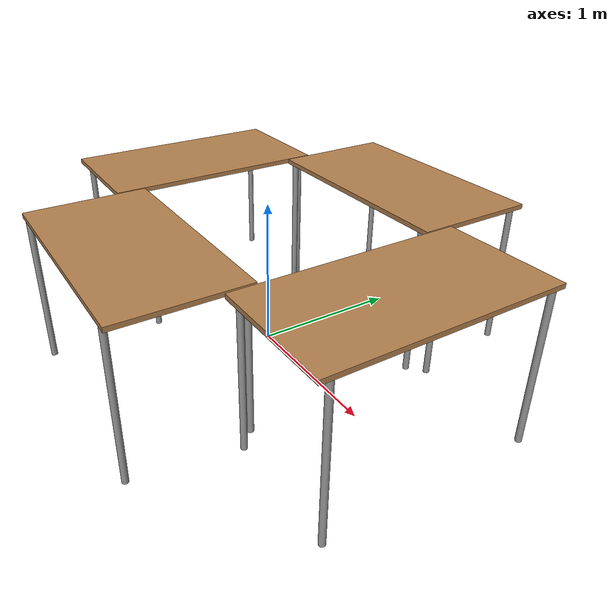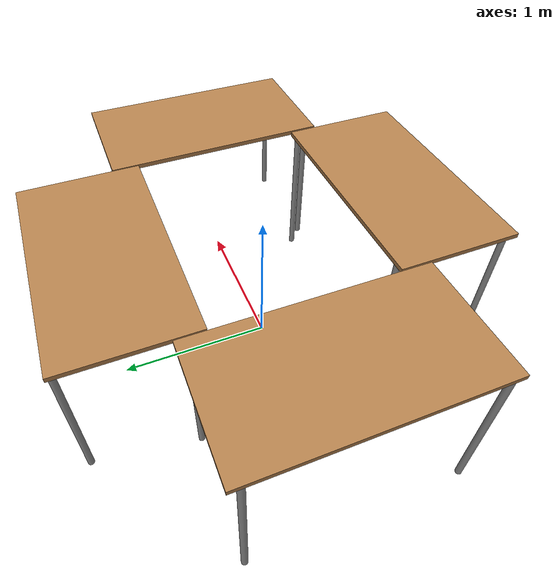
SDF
<sdf version="1.7">
 <world name="__default__">
  <gravity>0 0 -9.8</gravity>
  <magnetic_field>6e-06 2.3e-05 -4.2e-05</magnetic_field>
  <atmosphere type="adiabatic"/>
  <physics type="ode">
   <max_step_size>0.001</max_step_size>
   <real_time_factor>1</real_time_factor>
   <real_time_update_rate>1000</real_time_update_rate>
  </physics>
  <scene><ambient>0.4 0.4 0.4 1</ambient><background>0.7 0.7 0.7 1</background><shadows>1</shadows></scene>
  <spherical_coordinates>
   <surface_model>EARTH_WGS84</surface_model>
   <latitude_deg>0</latitude_deg>
   <longitude_deg>0</longitude_deg>
   <elevation>0</elevation>
   <heading_deg>0</heading_deg>
  </spherical_coordinates>
  <model name="Tables_test">
   <model name="table">
    <static>1</static>
    <link name="link">
     <collision name="surface">
      <pose>0 0 1 0 -0 0</pose>
      <geometry><box><size>1.5 0.8 0.03</size></box></geometry>
      <surface><friction><ode><mu>0.6</mu><mu2>0.6</mu2></ode></friction></surface>
     </collision>
     <visual name="visual1">
      <pose>0 0 1 0 -0 0</pose>
      <geometry><box><size>1.5 0.8 0.03</size></box></geometry>
      <material>
       <script><uri>file://media/materials/scripts/gazebo.material</uri><name>Gazebo/Wood</name></script>
      </material>
     </visual>
     <collision name="front_left_leg">
      <pose>0.68 0.38 0.5 0 -0 0</pose>
      <geometry><cylinder><radius>0.02</radius><length>1</length></cylinder></geometry>
     </collision>
     <visual name="front_left_leg">
      <pose>0.68 0.38 0.5 0 -0 0</pose>
      <geometry><cylinder><radius>0.02</radius><length>1</length></cylinder></geometry>
      <material>
       <script><uri>file://media/materials/scripts/gazebo.material</uri><name>Gazebo/Grey</name></script>
      </material>
     </visual>
     <collision name="front_right_leg">
      <pose>0.68 -0.38 0.5 0 -0 0</pose>
      <geometry><cylinder><radius>0.02</radius><length>1</length></cylinder></geometry>
     </collision>
     <visual name="front_right_leg">
      <pose>0.68 -0.38 0.5 0 -0 0</pose>
      <geometry><cylinder><radius>0.02</radius><length>1</length></cylinder></geometry>
      <material>
       <script><uri>file://media/materials/scripts/gazebo.material</uri><name>Gazebo/Grey</name></script>
      </material>
     </visual>
     <collision name="back_right_leg">
      <pose>-0.68 -0.38 0.5 0 -0 0</pose>
      <geometry><cylinder><radius>0.02</radius><length>1</length></cylinder></geometry>
     </collision>
     <visual name="back_right_leg">
      <pose>-0.68 -0.38 0.5 0 -0 0</pose>
      <geometry><cylinder><radius>0.02</radius><length>1</length></cylinder></geometry>
      <material>
       <script><uri>file://media/materials/scripts/gazebo.material</uri><name>Gazebo/Grey</name></script>
      </material>
     </visual>
     <collision name="back_left_leg">
      <pose>-0.68 0.38 0.5 0 -0 0</pose>
      <geometry><cylinder><radius>0.02</radius><length>1</length></cylinder></geometry>
     </collision>
     <visual name="back_left_leg">
      <pose>-0.68 0.38 0.5 0 -0 0</pose>
      <geometry><cylinder><radius>0.02</radius><length>1</length></cylinder></geometry>
      <material>
       <script><uri>file://media/materials/scripts/gazebo.material</uri><name>Gazebo/Grey</name></script>
      </material>
     </visual>
    </link>
    <pose>-0.002493 -0.963577 0 0 -0 0</pose>
   </model>
   <model name="table_0">
    <static>1</static>
    <link name="link">
     <collision name="surface">
      <pose>0 0 1 0 -0 0</pose>
      <geometry><box><size>1.5 0.8 0.03</size></box></geometry>
      <surface><friction><ode><mu>0.6</mu><mu2>0.6</mu2></ode></friction></surface>
     </collision>
     <visual name="visual1">
      <pose>0 0 1 0 -0 0</pose>
      <geometry><box><size>1.5 0.8 0.03</size></box></geometry>
      <material>
       <script><uri>file://media/materials/scripts/gazebo.material</uri><name>Gazebo/Wood</name></script>
      </material>
     </visual>
     <collision name="front_left_leg">
      <pose>0.68 0.38 0.5 0 -0 0</pose>
      <geometry><cylinder><radius>0.02</radius><length>1</length></cylinder></geometry>
     </collision>
     <visual name="front_left_leg">
      <pose>0.68 0.38 0.5 0 -0 0</pose>
      <geometry><cylinder><radius>0.02</radius><length>1</length></cylinder></geometry>
      <material>
       <script><uri>file://media/materials/scripts/gazebo.material</uri><name>Gazebo/Grey</name></script>
      </material>
     </visual>
     <collision name="front_right_leg">
      <pose>0.68 -0.38 0.5 0 -0 0</pose>
      <geometry><cylinder><radius>0.02</radius><length>1</length></cylinder></geometry>
     </collision>
     <visual name="front_right_leg">
      <pose>0.68 -0.38 0.5 0 -0 0</pose>
      <geometry><cylinder><radius>0.02</radius><length>1</length></cylinder></geometry>
      <material>
       <script><uri>file://media/materials/scripts/gazebo.material</uri><name>Gazebo/Grey</name></script>
      </material>
     </visual>
     <collision name="back_right_leg">
      <pose>-0.68 -0.38 0.5 0 -0 0</pose>
      <geometry><cylinder><radius>0.02</radius><length>1</length></cylinder></geometry>
     </collision>
     <visual name="back_right_leg">
      <pose>-0.68 -0.38 0.5 0 -0 0</pose>
      <geometry><cylinder><radius>0.02</radius><length>1</length></cylinder></geometry>
      <material>
       <script><uri>file://media/materials/scripts/gazebo.material</uri><name>Gazebo/Grey</name></script>
      </material>
     </visual>
     <collision name="back_left_leg">
      <pose>-0.68 0.38 0.5 0 -0 0</pose>
      <geometry><cylinder><radius>0.02</radius><length>1</length></cylinder></geometry>
     </collision>
     <visual name="back_left_leg">
      <pose>-0.68 0.38 0.5 0 -0 0</pose>
      <geometry><cylinder><radius>0.02</radius><length>1</length></cylinder></geometry>
      <material>
       <script><uri>file://media/materials/scripts/gazebo.material</uri><name>Gazebo/Grey</name></script>
      </material>
     </visual>
    </link>
    <pose>0.000767 0.967677 0 0 -0 0</pose>
   </model>
   <model name="table_1">
    <static>1</static>
    <link name="link">
     <collision name="surface">
      <pose>0 0 1 0 -0 0</pose>
      <geometry><box><size>1.5 0.8 0.03</size></box></geometry>
      <surface><friction><ode><mu>0.6</mu><mu2>0.6</mu2></ode></friction></surface>
     </collision>
     <visual name="visual1">
      <pose>0 0 1 0 -0 0</pose>
      <geometry><box><size>1.5 0.8 0.03</size></box></geometry>
      <material>
       <script><uri>file://media/materials/scripts/gazebo.material</uri><name>Gazebo/Wood</name></script>
      </material>
     </visual>
     <collision name="front_left_leg">
      <pose>0.68 0.38 0.5 0 -0 0</pose>
      <geometry><cylinder><radius>0.02</radius><length>1</length></cylinder></geometry>
     </collision>
     <visual name="front_left_leg">
      <pose>0.68 0.38 0.5 0 -0 0</pose>
      <geometry><cylinder><radius>0.02</radius><length>1</length></cylinder></geometry>
      <material>
       <script><uri>file://media/materials/scripts/gazebo.material</uri><name>Gazebo/Grey</name></script>
      </material>
     </visual>
     <collision name="front_right_leg">
      <pose>0.68 -0.38 0.5 0 -0 0</pose>
      <geometry><cylinder><radius>0.02</radius><length>1</length></cylinder></geometry>
     </collision>
     <visual name="front_right_leg">
      <pose>0.68 -0.38 0.5 0 -0 0</pose>
      <geometry><cylinder><radius>0.02</radius><length>1</length></cylinder></geometry>
      <material>
       <script><uri>file://media/materials/scripts/gazebo.material</uri><name>Gazebo/Grey</name></script>
      </material>
     </visual>
     <collision name="back_right_leg">
      <pose>-0.68 -0.38 0.5 0 -0 0</pose>
      <geometry><cylinder><radius>0.02</radius><length>1</length></cylinder></geometry>
     </collision>
     <visual name="back_right_leg">
      <pose>-0.68 -0.38 0.5 0 -0 0</pose>
      <geometry><cylinder><radius>0.02</radius><length>1</length></cylinder></geometry>
      <material>
       <script><uri>file://media/materials/scripts/gazebo.material</uri><name>Gazebo/Grey</name></script>
      </material>
     </visual>
     <collision name="back_left_leg">
      <pose>-0.68 0.38 0.5 0 -0 0</pose>
      <geometry><cylinder><radius>0.02</radius><length>1</length></cylinder></geometry>
     </collision>
     <visual name="back_left_leg">
      <pose>-0.68 0.38 0.5 0 -0 0</pose>
      <geometry><cylinder><radius>0.02</radius><length>1</length></cylinder></geometry>
      <material>
       <script><uri>file://media/materials/scripts/gazebo.material</uri><name>Gazebo/Grey</name></script>
      </material>
     </visual>
    </link>
    <pose>-1.16068 0.00058 0 0 0 -1.57586</pose>
   </model>
   <model name="table_2">
    <static>1</static>
    <link name="link">
     <collision name="surface">
      <pose>0 0 1 0 -0 0</pose>
      <geometry><box><size>1.5 0.8 0.03</size></box></geometry>
      <surface><friction><ode><mu>0.6</mu><mu2>0.6</mu2></ode></friction></surface>
     </collision>
     <visual name="visual1">
      <pose>0 0 1 0 -0 0</pose>
      <geometry><box><size>1.5 0.8 0.03</size></box></geometry>
      <material>
       <script><uri>file://media/materials/scripts/gazebo.material</uri><name>Gazebo/Wood</name></script>
      </material>
     </visual>
     <collision name="front_left_leg">
      <pose>0.68 0.38 0.5 0 -0 0</pose>
      <geometry><cylinder><radius>0.02</radius><length>1</length></cylinder></geometry>
     </collision>
     <visual name="front_left_leg">
      <pose>0.68 0.38 0.5 0 -0 0</pose>
      <geometry><cylinder><radius>0.02</radius><length>1</length></cylinder></geometry>
      <material>
       <script><uri>file://media/materials/scripts/gazebo.material</uri><name>Gazebo/Grey</name></script>
      </material>
     </visual>
     <collision name="front_right_leg">
      <pose>0.68 -0.38 0.5 0 -0 0</pose>
      <geometry><cylinder><radius>0.02</radius><length>1</length></cylinder></geometry>
     </collision>
     <visual name="front_right_leg">
      <pose>0.68 -0.38 0.5 0 -0 0</pose>
      <geometry><cylinder><radius>0.02</radius><length>1</length></cylinder></geometry>
      <material>
       <script><uri>file://media/materials/scripts/gazebo.material</uri><name>Gazebo/Grey</name></script>
      </material>
     </visual>
     <collision name="back_right_leg">
      <pose>-0.68 -0.38 0.5 0 -0 0</pose>
      <geometry><cylinder><radius>0.02</radius><length>1</length></cylinder></geometry>
     </collision>
     <visual name="back_right_leg">
      <pose>-0.68 -0.38 0.5 0 -0 0</pose>
      <geometry><cylinder><radius>0.02</radius><length>1</length></cylinder></geometry>
      <material>
       <script><uri>file://media/materials/scripts/gazebo.material</uri><name>Gazebo/Grey</name></script>
      </material>
     </visual>
     <collision name="back_left_leg">
      <pose>-0.68 0.38 0.5 0 -0 0</pose>
      <geometry><cylinder><radius>0.02</radius><length>1</length></cylinder></geometry>
     </collision>
     <visual name="back_left_leg">
      <pose>-0.68 0.38 0.5 0 -0 0</pose>
      <geometry><cylinder><radius>0.02</radius><length>1</length></cylinder></geometry>
      <material>
       <script><uri>file://media/materials/scripts/gazebo.material</uri><name>Gazebo/Grey</name></script>
      </material>
     </visual>
    </link>
    <pose>1.1624 -0.004681 0 0 0 -1.56881</pose>
   </model>
   <static>0</static>
   <pose>0.110252 -0.006937 0 0 -0 0</pose>
  </model>
  <light name="user_directional_light_0" type="directional">
   <pose>-1.34483 0.115669 1 0 -0 0</pose>
   <diffuse>0.5 0.5 0.5 1</diffuse>
   <specular>0.1 0.1 0.1 1</specular>
   <direction>0.1 0.1 -0.9</direction>
   <attenuation>
    <range>20</range>
    <constant>0.5</constant>
    <linear>0.01</linear>
    <quadratic>0.001</quadratic>
   </attenuation>
   <spot><inner_angle>0</inner_angle><outer_angle>0</outer_angle><falloff>0</falloff></spot>
  </light>
  <light name="user_directional_light_1" type="directional">
   <pose>-0.030708 0.929523 1 0 -0 0</pose>
   <diffuse>0.5 0.5 0.5 1</diffuse>
   <specular>0.1 0.1 0.1 1</specular>
   <direction>0.1 0.1 -0.9</direction>
   <attenuation>
    <range>20</range>
    <constant>0.5</constant>
    <linear>0.01</linear>
    <quadratic>0.001</quadratic>
   </attenuation>
   <spot><inner_angle>0</inner_angle><outer_angle>0</outer_angle><falloff>0</falloff></spot>
  </light>
  <light name="user_directional_light_2" type="directional">
   <pose>1.22598 -0.249413 1 0 -0 0</pose>
   <diffuse>0.5 0.5 0.5 1</diffuse>
   <specular>0.1 0.1 0.1 1</specular>
   <direction>0.1 0.1 -0.9</direction>
   <attenuation>
    <range>20</range>
    <constant>0.5</constant>
    <linear>0.01</linear>
    <quadratic>0.001</quadratic>
   </attenuation>
   <spot><inner_angle>0</inner_angle><outer_angle>0</outer_angle><falloff>0</falloff></spot>
  </light>
  <light name="user_directional_light_3" type="directional">
   <pose>0.143839 -1.06468 1 0 -0 0</pose>
   <diffuse>0.5 0.5 0.5 1</diffuse>
   <specular>0.1 0.1 0.1 1</specular>
   <direction>0.1 0.1 -0.9</direction>
   <attenuation>
    <range>20</range>
    <constant>0.5</constant>
    <linear>0.01</linear>
    <quadratic>0.001</quadratic>
   </attenuation>
   <spot><inner_angle>0</inner_angle><outer_angle>0</outer_angle><falloff>0</falloff></spot>
  </light>
 </world>
</sdf>
